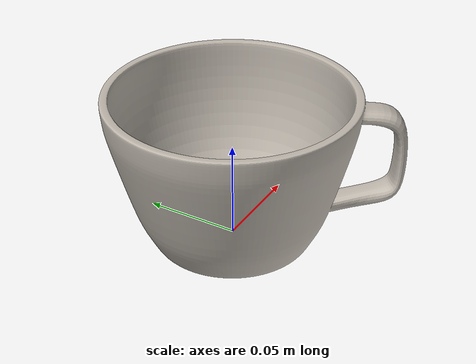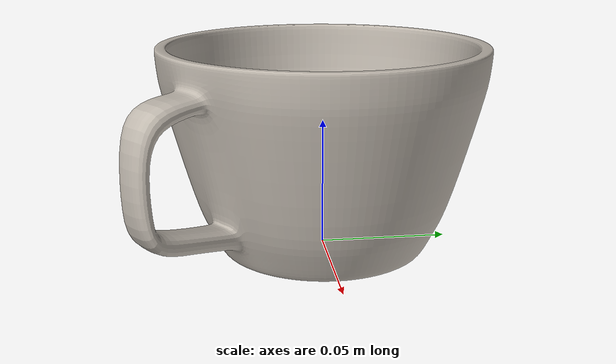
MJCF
<mujoco model="mug_1">
  <asset>
    <mesh file="meshes/mug_1.obj" name="mug_mesh" scale="2.0 2.0 2.0"/>
    <texture type="2d" file="../textures/ceramic.png" name="tex-ceramic"/>
    <material name="ceramic" reflectance="0.3" texrepeat="3 3" texture="tex-ceramic" texuniform="true"/>
  </asset>
  <worldbody>
    <body>
      <body name="object">
        <geom pos="0 0 0" mesh="mug_mesh" type="mesh" solimp="0.998 0.998 0.001" solref="0.001 1" density="100" friction="0.95 0.3 0.1" material="ceramic" contype="0" conaffinity="0" group="1"/>
        <geom pos="0 0 0" mesh="mug_mesh" type="mesh" solimp="0.998 0.998 0.001" solref="0.001 1" density="100" friction="0.95 0.3 0.1" material="ceramic" group="0"/>
      </body>
      <site rgba="0 0 0 0" size="0.005" pos="0 0 0" name="bottom_site"/>
      <site rgba="0 0 0 0" size="0.005" pos="0 0.00 0.08" name="top_site"/>
      <site rgba="0 0 0 0" size="0.005" pos="0.06 0.06 0" name="horizontal_radius_site"/>
    </body>
  </worldbody>
</mujoco>
